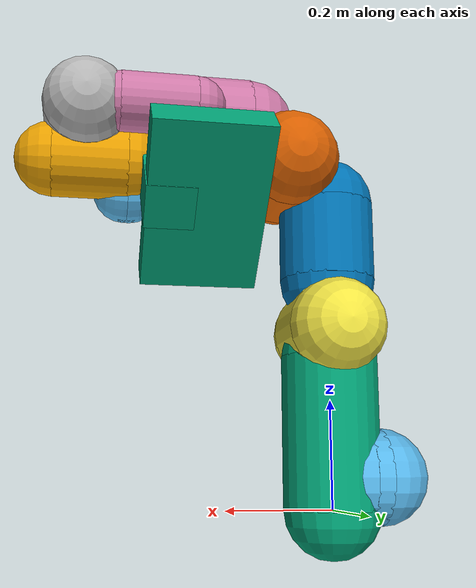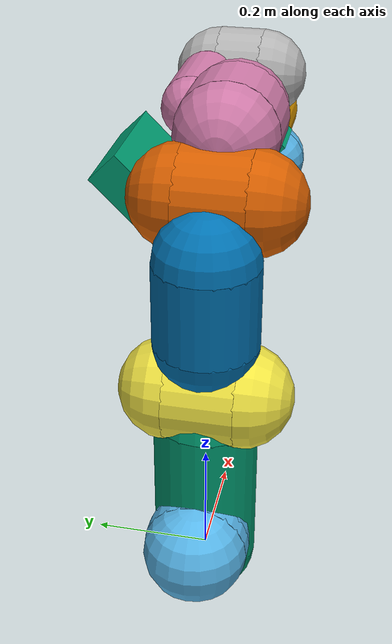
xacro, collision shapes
<?xml version="1.0" encoding="utf-8"?>
<robot xmlns:xacro="http://www.ros.org/wiki/xacro" name="panda">
<link name="world" />

  <xacro:include filename="$(find franka_description)/robots/panda_arm.xacro"/>
  <xacro:include filename="$(find franka_description)/robots/driller_new.xacro"/>
<xacro:panda_arm safety_distance="0.03" connected_to="world"/>
<xacro:driller_new ns="panda" rpy="0 0 0.785398" connected_to="panda_link8" safety_distance="0.03"/>
</robot>

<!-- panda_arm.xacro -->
<robot xmlns:xacro="http://www.ros.org/wiki/xacro" name="panda">
  <!-- safety_distance: Minimum safety distance in [m] by which the collision volumes are expanded and which is enforced during robot motions -->
  <!-- arm_id: Namespace of the panda arm. Serves to differentiate between arms in case of multiple instances. -->
  <xacro:macro name="panda_arm" params="arm_id:='panda' description_pkg:='franka_description' connected_to:='' xyz:='0 0 0' rpy:='0 0 0' safety_distance:=0">
    <xacro:unless value="${not connected_to}">
      <joint name="${arm_id}_joint_${connected_to}" type="fixed">
        <parent link="${connected_to}"/>
        <child link="${arm_id}_link0"/>
        <origin rpy="${rpy}" xyz="${xyz}"/>
      </joint>
    </xacro:unless>
    <link name="${arm_id}_link0">
      <visual>
        <geometry>
          <mesh filename="package://${description_pkg}/meshes/visual/link0.dae"/>
        </geometry>
      </visual>
      <collision>
        <origin xyz="-0.075 0 0.06" rpy="0 ${pi/2} 0"/>
        <geometry>
          <cylinder radius="${0.06+safety_distance}" length="0.03" />
        </geometry>
      </collision>
      <collision>
        <origin xyz="-0.06 0 0.06" rpy="0 0 0"/>
        <geometry>
          <sphere radius="${0.06+safety_distance}" />
        </geometry>
      </collision>
      <collision>
        <origin xyz="-0.09 0 0.06" rpy="0 0 0"/>
        <geometry>
          <sphere radius="${0.06+safety_distance}" />
        </geometry>
      </collision>
    </link>
    <link name="${arm_id}_link1">
      <visual>
        <geometry>
          <mesh filename="package://${description_pkg}/meshes/visual/link1.dae"/>
        </geometry>
      </visual>
      <collision>
        <origin xyz="0 0 -0.1915" rpy="0 0 0"/>
        <geometry>
          <cylinder radius="${0.06+safety_distance}" length="0.2830" />
        </geometry>
      </collision>
      <collision>
        <origin xyz="0 0 -0.333" rpy="0 0 0"/>
        <geometry>
          <sphere radius="${0.06+safety_distance}" />
        </geometry>
      </collision>
      <collision>
        <origin xyz="0 0 -0.05" rpy="0 0 0"/>
        <geometry>
          <sphere radius="${0.06+safety_distance}" />
        </geometry>
      </collision>
    </link>
    <joint name="${arm_id}_joint1" type="revolute">
      <safety_controller k_position="100.0" k_velocity="40.0" soft_lower_limit="-2.8973" soft_upper_limit="2.8973"/>
      <origin rpy="0 0 0" xyz="0 0 0.333"/>
      <parent link="${arm_id}_link0"/>
      <child link="${arm_id}_link1"/>
      <axis xyz="0 0 1"/>
      <limit effort="87" lower="-2.8973" upper="2.8973" velocity="2.1750"/>
    </joint>
    <link name="${arm_id}_link2">
      <visual>
        <geometry>
          <mesh filename="package://${description_pkg}/meshes/visual/link2.dae"/>
        </geometry>
      </visual>
      <collision>
        <origin xyz="0 0 0" rpy="0 0 0"/>
        <geometry>
          <cylinder radius="${0.06+safety_distance}" length="0.12" />
        </geometry>
      </collision>
      <collision>
        <origin xyz="0 0 -0.06" rpy="0 0 0"/>
        <geometry>
          <sphere radius="${0.06+safety_distance}" />
        </geometry>
      </collision>
      <collision>
        <origin xyz="0 0 0.06" rpy="0 0 0"/>
        <geometry>
          <sphere radius="${0.06+safety_distance}" />
        </geometry>
      </collision>
    </link>
    <joint name="${arm_id}_joint2" type="revolute">
      <safety_controller k_position="100.0" k_velocity="40.0" soft_lower_limit="-1.7628" soft_upper_limit="1.7628"/>
      <origin rpy="${-pi/2} 0 0" xyz="0 0 0"/>
      <parent link="${arm_id}_link1"/>
      <child link="${arm_id}_link2"/>
      <axis xyz="0 0 1"/>
      <limit effort="87" lower="-1.7628" upper="1.7628" velocity="2.1750"/>
    </joint>
    <link name="${arm_id}_link3">
      <visual>
        <geometry>
          <mesh filename="package://${description_pkg}/meshes/visual/link3.dae"/>
        </geometry>
      </visual>
      <collision>
        <origin xyz="0 0 -0.145" rpy="0 0 0"/>
        <geometry>
          <cylinder radius="${0.06+safety_distance}" length="0.15" />
        </geometry>
      </collision>
      <collision>
        <origin xyz="0 0 -0.22" rpy="0 0 0"/>
        <geometry>
          <sphere radius="${0.06+safety_distance}" />
        </geometry>
      </collision>
      <collision>
        <origin xyz="0 0 -0.07" rpy="0 0 0"/>
        <geometry>
          <sphere radius="${0.06+safety_distance}" />
        </geometry>
      </collision>
    </link>
    <joint name="${arm_id}_joint3" type="revolute">
      <safety_controller k_position="100.0" k_velocity="40.0" soft_lower_limit="-2.8973" soft_upper_limit="2.8973"/>
      <origin rpy="${pi/2} 0 0" xyz="0 -0.316 0"/>
      <parent link="${arm_id}_link2"/>
      <child link="${arm_id}_link3"/>
      <axis xyz="0 0 1"/>
      <limit effort="87" lower="-2.8973" upper="2.8973" velocity="2.1750"/>
    </joint>
    <link name="${arm_id}_link4">
      <visual>
        <geometry>
          <mesh filename="package://${description_pkg}/meshes/visual/link4.dae"/>
        </geometry>
      </visual>
      <collision>
        <origin xyz="0 0 0" rpy="0 0 0"/>
        <geometry>
          <cylinder radius="${0.06+safety_distance}" length="0.12" />
        </geometry>
      </collision>
      <collision>
        <origin xyz="0 0 0.06" rpy="0 0 0"/>
        <geometry>
          <sphere radius="${0.06+safety_distance}" />
        </geometry>
      </collision>
      <collision>
        <origin xyz="0 0 -0.06" rpy="0 0 0"/>
        <geometry>
          <sphere radius="${0.06+safety_distance}" />
        </geometry>
      </collision>
    </link>
    <joint name="${arm_id}_joint4" type="revolute">
      <safety_controller k_position="100.0" k_velocity="40.0" soft_lower_limit="-3.0718" soft_upper_limit="-0.0698"/>
      <origin rpy="${pi/2} 0 0" xyz="0.0825 0 0"/>
      <parent link="${arm_id}_link3"/>
      <child link="${arm_id}_link4"/>
      <axis xyz="0 0 1"/>
      <limit effort="87" lower="-3.0718" upper="-0.0698" velocity="2.1750"/>
    </joint>
    <link name="${arm_id}_link5">
      <visual>
        <geometry>
          <mesh filename="package://${description_pkg}/meshes/visual/link5.dae"/>
        </geometry>
      </visual>
      <collision>
        <origin xyz="0 0 -0.26" rpy="0 0 0"/>
        <geometry>
          <cylinder radius="${0.06+safety_distance}" length="0.1" />
        </geometry>
      </collision>
      <collision>
        <origin xyz="0 0 -0.31" rpy="0 0 0"/>
        <geometry>
          <sphere radius="${0.06+safety_distance}" />
        </geometry>
      </collision>
      <collision>
        <origin xyz="0 0 -0.21" rpy="0 0 0"/>
        <geometry>
          <sphere radius="${0.06+safety_distance}" />
        </geometry>
      </collision>
      <collision>
        <origin xyz="0 0.08 -0.13" rpy="0 0 0"/>
        <geometry>
          <cylinder radius="${0.025+safety_distance}" length="0.14" />
        </geometry>
      </collision>
      <collision>
        <origin xyz="0 0.08 -0.06" rpy="0 0 0"/>
        <geometry>
          <sphere radius="${0.025+safety_distance}" />
        </geometry>
      </collision>
      <collision>
        <origin xyz="0 0.08 -0.20" rpy="0 0 0"/>
        <geometry>
          <sphere radius="${0.025+safety_distance}" />
        </geometry>
      </collision>

    </link>
    <joint name="${arm_id}_joint5" type="revolute">
      <safety_controller k_position="100.0" k_velocity="40.0" soft_lower_limit="-2.8973" soft_upper_limit="2.8973"/>
      <origin rpy="${-pi/2} 0 0" xyz="-0.0825 0.384 0"/>
      <parent link="${arm_id}_link4"/>
      <child link="${arm_id}_link5"/>
      <axis xyz="0 0 1"/>
      <limit effort="12" lower="-2.8973" upper="2.8973" velocity="2.6100"/>
    </joint>
    <link name="${arm_id}_link6">
      <visual>
        <geometry>
          <mesh filename="package://${description_pkg}/meshes/visual/link6.dae"/>
        </geometry>
      </visual>
      <collision>
        <origin xyz="0 0 -0.03" rpy="0 0 0"/>
        <geometry>
          <cylinder radius="${0.05+safety_distance}" length="0.08" />
        </geometry>
      </collision>
      <collision>
        <origin xyz="0 0 0.01" rpy="0 0 0"/>
        <geometry>
          <sphere radius="${0.05+safety_distance}" />
        </geometry>
      </collision>
      <collision>
        <origin xyz="0 0 -0.07" rpy="0 0 0"/>
        <geometry>
          <sphere radius="${0.05+safety_distance}" />
        </geometry>
      </collision>
    </link>
    <joint name="${arm_id}_joint6" type="revolute">
      <safety_controller k_position="100.0" k_velocity="40.0" soft_lower_limit="-0.0175" soft_upper_limit="3.7525"/>
      <origin rpy="${pi/2} 0 0" xyz="0 0 0"/>
      <parent link="${arm_id}_link5"/>
      <child link="${arm_id}_link6"/>
      <axis xyz="0 0 1"/>
      <limit effort="12" lower="-0.0175" upper="3.7525" velocity="2.6100"/>
    </joint>
    <link name="${arm_id}_link7">
      <visual>
        <geometry>
          <mesh filename="package://${description_pkg}/meshes/visual/link7.dae"/>
        </geometry>
      </visual>
      <collision>
        <origin xyz="0 0 0.01" rpy="0 0 0"/>
        <geometry>
          <cylinder radius="${0.04+safety_distance}" length="0.14" />
        </geometry>
      </collision>
      <collision>
        <origin xyz="0 0 0.08" rpy="0 0 0"/>
        <geometry>
          <sphere radius="${0.04+safety_distance}"  />
        </geometry>
      </collision>
      <collision>
        <origin xyz="0 0 -0.06" rpy="0 0 0"/>
        <geometry>
          <sphere radius="${0.04+safety_distance}"  />
        </geometry>
      </collision>
    </link>
    <joint name="${arm_id}_joint7" type="revolute">
      <safety_controller k_position="100.0" k_velocity="40.0" soft_lower_limit="-2.8973" soft_upper_limit="2.8973"/>
      <origin rpy="${pi/2} 0 0" xyz="0.088 0 0"/>
      <parent link="${arm_id}_link6"/>
      <child link="${arm_id}_link7"/>
      <axis xyz="0 0 1"/>
      <limit effort="12" lower="-2.8973" upper="2.8973" velocity="2.6100"/>
    </joint>
    <link name="${arm_id}_link8">
      <collision>
        <origin xyz="0.0424 0.0424 -0.0250" rpy="${pi} ${pi/2} ${pi/2}"/>
        <geometry>
          <cylinder radius="${0.03+safety_distance}"  length="0.01" />
        </geometry>
      </collision>
      <collision>
        <origin xyz="0.0424 0.0424 -0.02" rpy="0 0 0"/>
        <geometry>
          <sphere radius="${0.03+safety_distance}"  />
        </geometry>
      </collision>
      <collision>
        <origin xyz="0.0424 0.0424 -0.03" rpy="0 0 0"/>
        <geometry>
          <sphere radius="${0.03+safety_distance}"  />
        </geometry>
      </collision>
    </link>
    <joint name="${arm_id}_joint8" type="fixed">
      <origin rpy="0 0 0" xyz="0 0 0.107"/>
      <parent link="${arm_id}_link7"/>
      <child link="${arm_id}_link8"/>
    </joint>
  </xacro:macro>
</robot>

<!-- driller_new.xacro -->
<robot xmlns:xacro="http://www.ros.org/wiki/xacro" name="driller_new">
  <!-- safety_distance: Minimum safety distance in [m] by which the collision volumes are expanded and which is enforced during robot motions -->
  <xacro:macro name="driller_new" params="connected_to:='' ns:='' rpy:='0 0 0' xyz:='0 0 0' safety_distance:=0">
    <xacro:unless value="${connected_to == ''}">
      <joint name="${ns}_driller_new_joint" type="fixed">
        <parent link="${connected_to}"/>
        <child link="${ns}_driller_new"/>
        <origin xyz="${xyz}" rpy="${rpy}"/>
      </joint>
    </xacro:unless>
    <link name="${ns}_driller_new">
      <visual>
        <geometry>
          <mesh filename="package://franka_description/meshes/visual/driller_new_m.stl"/>
        </geometry>
      </visual>
      <collision>
        <origin rpy="0 0 0" xyz="0 -0.051 0.0425"/>
        <geometry>
            <box size="0.082 0.25 0.09"/>
        </geometry>
    </collision>
    <collision>
        <origin rpy="0 0 0" xyz="0 -0.1395 0.107"/>
        <geometry>
            <box size="0.32 0.068 0.214"/>
        </geometry>
    </collision>
    </link>

  </xacro:macro>
</robot>
